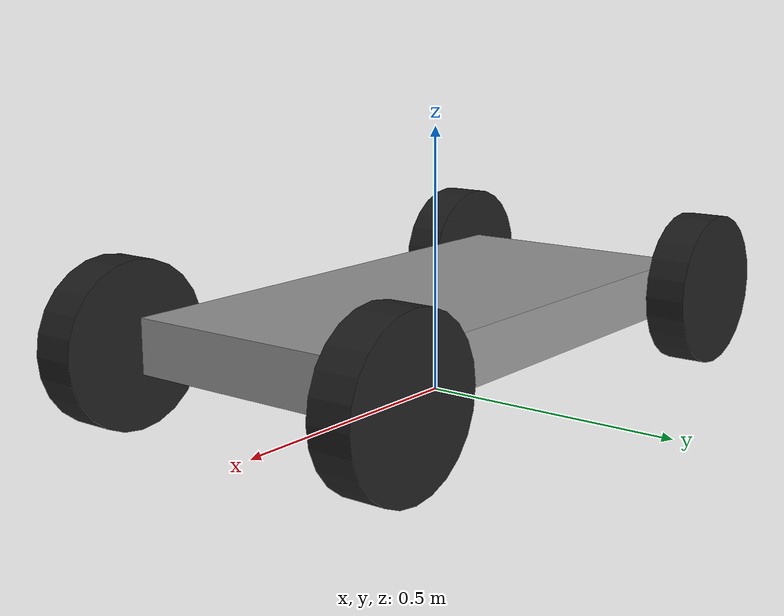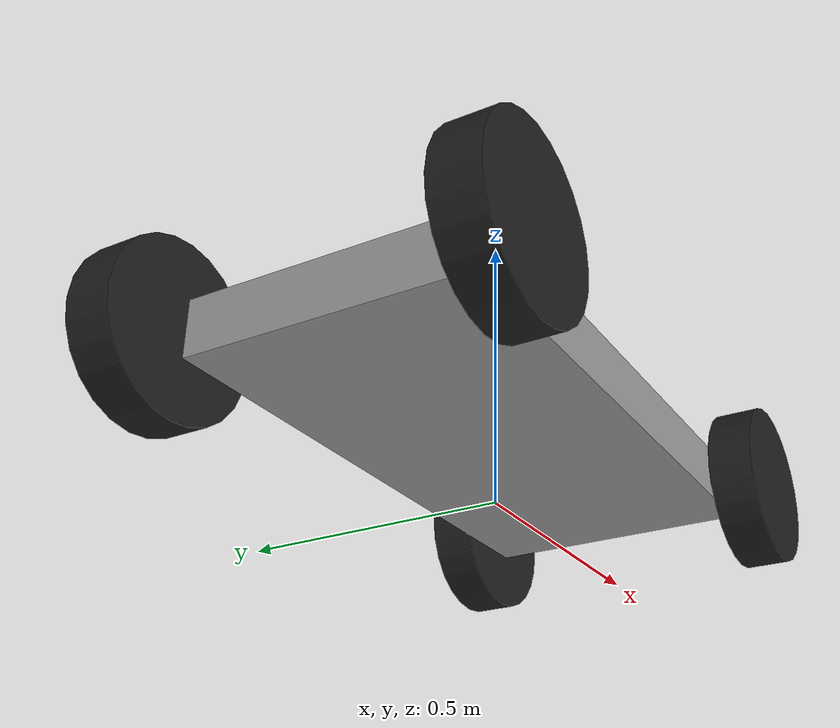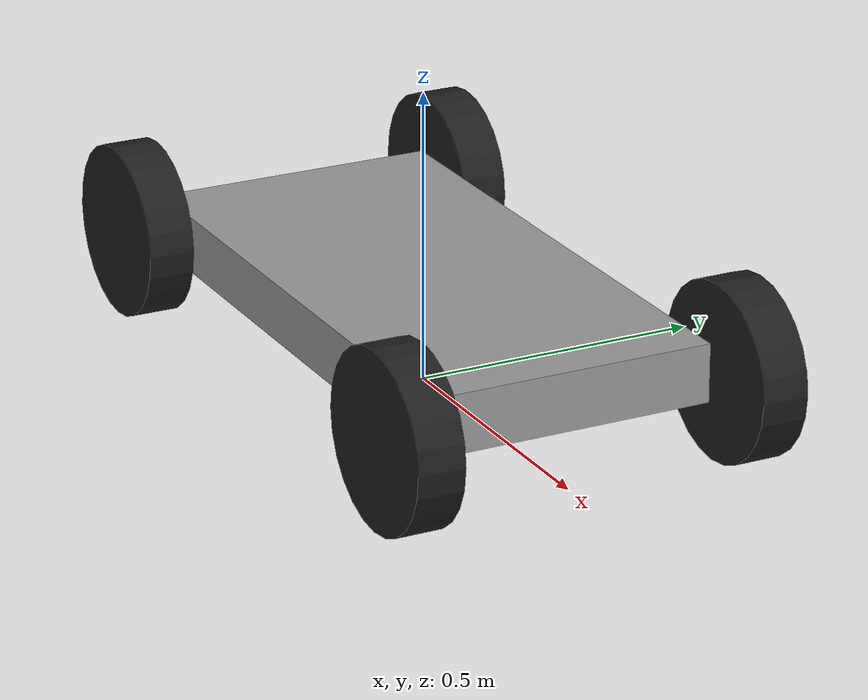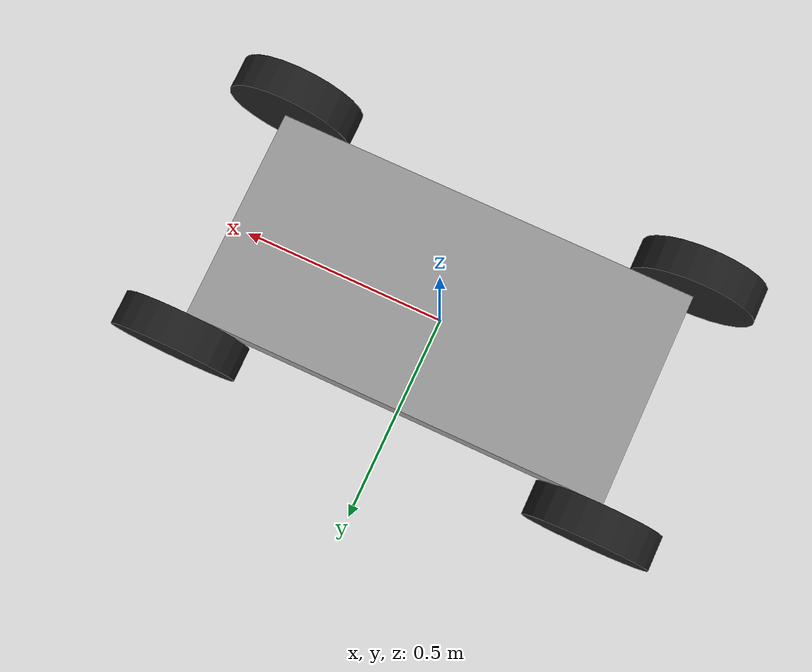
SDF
<?xml version="1.0" ?>

<sdf version="1.5">
  <model name="cart_soft_suspension">
    <link name="chassis">
      <pose>0 0 0.15  0 0 0</pose>
      <inertial>
        <pose>0.1 0 0  0 0 0</pose>
        <mass>10</mass>
        <inertia>
          <ixx>0.216666666666667</ixx>
          <iyy>0.841666666666667</iyy>
          <izz>1.04166666666667</izz>
          <ixy>0</ixy>
          <ixz>0</ixz>
          <iyz>0</iyz>
        </inertia>
      </inertial>
      <collision name="collision">
        <geometry>
          <box>
            <size>1.0 0.5 0.1</size>
          </box>
        </geometry>
      </collision>
      <visual name="visual">
        <geometry>
          <box>
            <size>1.0 0.5 0.1</size>
          </box>
        </geometry>
        <material>
          <script>
            <uri>file://media/materials/scripts/gazebo.material</uri>
            <name>Gazebo/Grey</name>
          </script>
        </material>
      </visual>

      <sensor name="imu_sensor" type="imu">
        <update_rate>50</update_rate>
        <imu>
          <!-- 기본값들은 센서의 오차나 노이즈를 고려해 조정할 수 있습니다. -->
          <angular_velocity>
            <x>0</x>
            <y>0</y>
            <z>0</z>
          </angular_velocity>
          <linear_acceleration>
            <x>0</x>
            <y>0</y>
            <z>0</z>
          </linear_acceleration>
          <orientation>
            <x>0</x>
            <y>0</y>
            <z>0</z>
            <w>1</w>
          </orientation>
        </imu>
        <plugin name="gazebo_ros_imu" filename="libgazebo_ros_imu.so">
          <ros>
            <namespace>/ds_car</namespace>
            <remapping>imu:=imu/data</remapping>
          </ros>
          <!-- 추가 파라미터 (옵션) -->
          <update_rate>50</update_rate>
        </plugin>
      </sensor>
    </link>

    <link name="susp_front_right">
      <pose>0.5 -0.298 0.15  0 0 0</pose>
      <inertial>
        <mass>0.5</mass>
        <inertia>
          <ixx>0.000208333333333333</ixx>
          <iyy>0.000208333333333333</iyy>
          <izz>0.000208333333333333</izz>
          <ixy>0</ixy>
          <ixz>0</ixz>
          <iyz>0</iyz>
        </inertia>
      </inertial>
      <collision name="collision">
        <geometry>
          <box>
            <size>0.05 0.05 0.05</size>
          </box>
        </geometry>
      </collision>
      <visual name="visual">
        <geometry>
          <box>
            <size>0.05 0.05 0.05</size>
          </box>
        </geometry>
        <material>
          <script>
            <uri>file://media/materials/scripts/gazebo.material</uri>
            <name>Gazebo/Black</name>
          </script>
        </material>
      </visual>
    </link>
    <joint name="susp_front_right_prismatic" type="prismatic">
      <parent>chassis</parent>
      <child>susp_front_right</child>
      <axis>
        <xyz>0 0 -1</xyz>
        <limit>
          <lower>-0.0375</lower>
          <upper>0.0375</upper>
        </limit>
        <dynamics>
          <damping>100</damping>
          <spring_stiffness>2500</spring_stiffness>
          <spring_reference>0.05</spring_reference>
        </dynamics>
      </axis>
      <physics>
        <ode>
          <implicit_spring_damper>1</implicit_spring_damper>
        </ode>
      </physics>
    </joint>
    <link name="wheel_front_right">
      <pose>0.5 -0.298 0.15  -1.5707963267949 0 0</pose>
      <inertial>
        <mass>0.5</mass>
        <inertia>
          <ixx>0.00307916666666667</ixx>
          <iyy>0.00307916666666667</iyy>
          <izz>0.005625</izz>
          <ixy>0</ixy>
          <ixz>0</ixz>
          <iyz>0</iyz>
        </inertia>
      </inertial>
      <collision name="collision">
        <geometry>
          <cylinder>
            <radius>0.15</radius>
            <length>0.08</length>
          </cylinder>
        </geometry>
      </collision>
      <visual name="visual">
        <geometry>
          <cylinder>
            <radius>0.15</radius>
            <length>0.08</length>
          </cylinder>
        </geometry>
        <material>
          <script>
            <uri>file://media/materials/scripts/gazebo.material</uri>
            <name>Gazebo/Black</name>
          </script>
        </material>
      </visual>
    </link>
    <joint name="wheel_front_right_spin" type="revolute">
      <parent>susp_front_right</parent>
      <child>wheel_front_right</child>
      <axis>
        <xyz>0 0 1</xyz>
      </axis>
    </joint>

    <link name="susp_front_left">
      <pose>0.5 0.298 0.15  0 0 0</pose>
      <inertial>
        <mass>0.5</mass>
        <inertia>
          <ixx>0.000208333333333333</ixx>
          <iyy>0.000208333333333333</iyy>
          <izz>0.000208333333333333</izz>
          <ixy>0</ixy>
          <ixz>0</ixz>
          <iyz>0</iyz>
        </inertia>
      </inertial>
      <collision name="collision">
        <geometry>
          <box>
            <size>0.05 0.05 0.05</size>
          </box>
        </geometry>
      </collision>
      <visual name="visual">
        <geometry>
          <box>
            <size>0.05 0.05 0.05</size>
          </box>
        </geometry>
        <material>
          <script>
            <uri>file://media/materials/scripts/gazebo.material</uri>
            <name>Gazebo/Black</name>
          </script>
        </material>
      </visual>
    </link>
    <joint name="susp_front_left_prismatic" type="prismatic">
      <parent>chassis</parent>
      <child>susp_front_left</child>
      <axis>
        <xyz>0 0 -1</xyz>
        <limit>
          <lower>-0.0375</lower>
          <upper>0.0375</upper>
        </limit>
        <dynamics>
          <damping>100</damping>
          <spring_stiffness>2500</spring_stiffness>
          <spring_reference>0.05</spring_reference>
        </dynamics>
      </axis>
      <physics>
        <ode>
          <implicit_spring_damper>1</implicit_spring_damper>
        </ode>
      </physics>
    </joint>
    <link name="wheel_front_left">
      <pose>0.5 0.298 0.15  -1.5707963267949 0 0</pose>
      <inertial>
        <mass>0.5</mass>
        <inertia>
          <ixx>0.00307916666666667</ixx>
          <iyy>0.00307916666666667</iyy>
          <izz>0.005625</izz>
          <ixy>0</ixy>
          <ixz>0</ixz>
          <iyz>0</iyz>
        </inertia>
      </inertial>
      <collision name="collision">
        <geometry>
          <cylinder>
            <radius>0.15</radius>
            <length>0.08</length>
          </cylinder>
        </geometry>
      </collision>
      <visual name="visual">
        <geometry>
          <cylinder>
            <radius>0.15</radius>
            <length>0.08</length>
          </cylinder>
        </geometry>
        <material>
          <script>
            <uri>file://media/materials/scripts/gazebo.material</uri>
            <name>Gazebo/Black</name>
          </script>
        </material>
      </visual>
    </link>
    <joint name="wheel_front_left_spin" type="revolute">
      <parent>susp_front_left</parent>
      <child>wheel_front_left</child>
      <axis>
        <xyz>0 0 1</xyz>
      </axis>
    </joint>

    <link name="susp_rear_right">
      <pose>-0.5 -0.298 0.15  0 0 0</pose>
      <inertial>
        <mass>0.5</mass>
        <inertia>
          <ixx>0.000208333333333333</ixx>
          <iyy>0.000208333333333333</iyy>
          <izz>0.000208333333333333</izz>
          <ixy>0</ixy>
          <ixz>0</ixz>
          <iyz>0</iyz>
        </inertia>
      </inertial>
      <collision name="collision">
        <geometry>
          <box>
            <size>0.05 0.05 0.05</size>
          </box>
        </geometry>
      </collision>
      <visual name="visual">
        <geometry>
          <box>
            <size>0.05 0.05 0.05</size>
          </box>
        </geometry>
        <material>
          <script>
            <uri>file://media/materials/scripts/gazebo.material</uri>
            <name>Gazebo/Black</name>
          </script>
        </material>
      </visual>
    </link>
    <joint name="susp_rear_right_prismatic" type="prismatic">
      <parent>chassis</parent>
      <child>susp_rear_right</child>
      <axis>
        <xyz>0 0 -1</xyz>
        <limit>
          <lower>-0.0375</lower>
          <upper>0.0375</upper>
        </limit>
        <dynamics>
          <damping>100</damping>
          <spring_stiffness>2500</spring_stiffness>
          <spring_reference>0.05</spring_reference>
        </dynamics>
      </axis>
      <physics>
        <ode>
          <implicit_spring_damper>1</implicit_spring_damper>
        </ode>
      </physics>
    </joint>
    <link name="wheel_rear_right">
      <pose>-0.5 -0.298 0.15  -1.5707963267949 0 0</pose>
      <inertial>
        <mass>0.5</mass>
        <inertia>
          <ixx>0.00307916666666667</ixx>
          <iyy>0.00307916666666667</iyy>
          <izz>0.005625</izz>
          <ixy>0</ixy>
          <ixz>0</ixz>
          <iyz>0</iyz>
        </inertia>
      </inertial>
      <collision name="collision">
        <geometry>
          <cylinder>
            <radius>0.15</radius>
            <length>0.08</length>
          </cylinder>
        </geometry>
      </collision>
      <visual name="visual">
        <geometry>
          <cylinder>
            <radius>0.15</radius>
            <length>0.08</length>
          </cylinder>
        </geometry>
        <material>
          <script>
            <uri>file://media/materials/scripts/gazebo.material</uri>
            <name>Gazebo/Black</name>
          </script>
        </material>
      </visual>
    </link>
    <joint name="wheel_rear_right_spin" type="revolute">
      <parent>susp_rear_right</parent>
      <child>wheel_rear_right</child>
      <axis>
        <xyz>0 0 1</xyz>
      </axis>
    </joint>

    <link name="susp_rear_left">
      <pose>-0.5 0.298 0.15  0 0 0</pose>
      <inertial>
        <mass>0.5</mass>
        <inertia>
          <ixx>0.000208333333333333</ixx>
          <iyy>0.000208333333333333</iyy>
          <izz>0.000208333333333333</izz>
          <ixy>0</ixy>
          <ixz>0</ixz>
          <iyz>0</iyz>
        </inertia>
      </inertial>
      <collision name="collision">
        <geometry>
          <box>
            <size>0.05 0.05 0.05</size>
          </box>
        </geometry>
      </collision>
      <visual name="visual">
        <geometry>
          <box>
            <size>0.05 0.05 0.05</size>
          </box>
        </geometry>
        <material>
          <script>
            <uri>file://media/materials/scripts/gazebo.material</uri>
            <name>Gazebo/Black</name>
          </script>
        </material>
      </visual>
    </link>
    <joint name="susp_rear_left_prismatic" type="prismatic">
      <parent>chassis</parent>
      <child>susp_rear_left</child>
      <axis>
        <xyz>0 0 -1</xyz>
        <limit>
          <lower>-0.0375</lower>
          <upper>0.0375</upper>
        </limit>
        <dynamics>
          <damping>100</damping>
          <spring_stiffness>2500</spring_stiffness>
          <spring_reference>0.05</spring_reference>
        </dynamics>
      </axis>
      <physics>
        <ode>
          <implicit_spring_damper>1</implicit_spring_damper>
        </ode>
      </physics>
    </joint>
    <link name="wheel_rear_left">
      <pose>-0.5 0.298 0.15  -1.5707963267949 0 0</pose>
      <inertial>
        <mass>0.5</mass>
        <inertia>
          <ixx>0.00307916666666667</ixx>
          <iyy>0.00307916666666667</iyy>
          <izz>0.005625</izz>
          <ixy>0</ixy>
          <ixz>0</ixz>
          <iyz>0</iyz>
        </inertia>
      </inertial>
      <collision name="collision">
        <geometry>
          <cylinder>
            <radius>0.15</radius>
            <length>0.08</length>
          </cylinder>
        </geometry>
      </collision>
      <visual name="visual">
        <geometry>
          <cylinder>
            <radius>0.15</radius>
            <length>0.08</length>
          </cylinder>
        </geometry>
        <material>
          <script>
            <uri>file://media/materials/scripts/gazebo.material</uri>
            <name>Gazebo/Black</name>
          </script>
        </material>
      </visual>
    </link>
    <joint name="wheel_rear_left_spin" type="revolute">
      <parent>susp_rear_left</parent>
      <child>wheel_rear_left</child>
      <axis>
        <xyz>0 0 1</xyz>
      </axis>
    </joint>

    <plugin filename="libgazebo_ros_diff_drive.so" name="gazebo_ros_diff_drive">
      <ros>
          <namespace>/ds_car</namespace>
          <remapping>cmd_vel:=cmd_vel</remapping>
          <remapping>odom:=odom</remapping>
      </ros>
      <left_joint>wheel_rear_left_spin</left_joint>
      <right_joint>wheel_rear_right_spin</right_joint>
      <wheel_separation>0.6</wheel_separation>
      <wheel_radius>0.15</wheel_radius>
      <wheel_diameter>0.3</wheel_diameter>
      <update_rate>50</update_rate>
      <publish_wheel_tf>true</publish_wheel_tf>
      <publish_odometry>true</publish_odometry>
      <odometry_topic>/ds_car/odom</odometry_topic>
      <odometry_frame>odom</odometry_frame>
      <robot_base_frame>chassis</robot_base_frame>
    </plugin>

    <link name="depth_camera_link">
      <pose>0.6 0 0.35 0 0 0</pose> <!-- 차량 앞부분 -->
      <sensor name="depth_camera_sensor" type="depth">
        <update_rate>10</update_rate>
        <camera>
          <horizontal_fov>1.57</horizontal_fov>
          <image>
            <width>640</width>
            <height>480</height>
            <format>R8G8B8</format>
          </image>
          <clip>
            <near>0.1</near>
            <far>10.0</far>
          </clip>
        </camera>
        <plugin name="gazebo_ros_camera" filename="libgazebo_ros_camera.so">
          <ros>
            <namespace>/ds_car</namespace>
            <remapping>image_raw:=depth_camera/image_raw</remapping>
          </ros>
        </plugin>
      </sensor>
    </link>

    <link name="lidar_link">
      <pose>0.6 0 0.25 0 0 0</pose> <!-- 차체 앞부분 -->
      <sensor name="lidar_sensor" type="ray">
        <update_rate>10</update_rate>
        <ray>
          <scan>
            <horizontal>
              <samples>720</samples> <!-- 720개 레이 (0.5도 간격) -->
              <resolution>1</resolution>
              <min_angle>-1.57</min_angle>
              <max_angle>1.57</max_angle>
            </horizontal>
          </scan>
          <range>
            <min>0.1</min> <!-- 최소 감지 거리 -->
            <max>10.0</max> <!-- 최대 감지 거리 -->
            <resolution>0.01</resolution>
          </range>
        </ray>
        <plugin name="gazebo_ros_laser" filename="libgazebo_ros_laser.so">
          <ros>
            <namespace>/ds_car</namespace>
            <remapping>scan:=lidar_scan</remapping>
          </ros>
          <output_type>sensor_msgs/LaserScan</output_type>
        </plugin>
      </sensor>
  </link>

  <link name="camera_link">
    <pose>0.6 0 0.35 0 0 0</pose> <!-- 차체 앞부분 -->
    <sensor name="camera_sensor" type="camera">
      <update_rate>30</update_rate>
      <camera>
        <horizontal_fov>1.57</horizontal_fov> <!-- 90도 FOV -->
        <image>
          <width>640</width>
          <height>480</height>
          <format>R8G8B8</format>
        </image>
        <clip>
          <near>0.02</near>
          <far>100</far>
        </clip>
      </camera>
      <plugin name="gazebo_ros_camera" filename="libgazebo_ros_camera.so">
        <ros>
          <namespace>/ds_car</namespace>
          <remapping>image_raw:=camera/image_raw</remapping>
        </ros>
      </plugin>
    </sensor>
  </link>

  <plugin name="gazebo_ros_joint_state_publisher" filename="libgazebo_ros_joint_state_publisher.so">
    <ros>
      <namespace>/ds_car</namespace>
      <remapping>joint_states:=/ds_car/joint_states</remapping>
    </ros>
    <joint_name>susp_front_right_prismatic</joint_name>
    <joint_name>susp_front_left_prismatic</joint_name>
    <joint_name>susp_rear_right_prismatic</joint_name>
    <joint_name>susp_rear_left_prismatic</joint_name>
  </plugin>

  <plugin name="gazebo_ros_diff_drive" filename="libgazebo_ros_diff_drive.so">
  <ros>
      <namespace>/ds_car</namespace>
      <remapping>odom:=odom</remapping>
  </ros>
  <left_joint>wheel_rear_left_spin</left_joint>
  <right_joint>wheel_rear_right_spin</right_joint>
  <wheel_separation>0.6</wheel_separation>
  <wheel_radius>0.15</wheel_radius>
  <wheel_diameter>0.3</wheel_diameter>
  <update_rate>50</update_rate>
  <publish_wheel_tf>true</publish_wheel_tf>
  <publish_odometry>true</publish_odometry>
  <odometry_topic>/ds_car/odom</odometry_topic>
  <odometry_frame>odom</odometry_frame>
  <robot_base_frame>chassis</robot_base_frame>
</plugin>

  </model>
</sdf>
